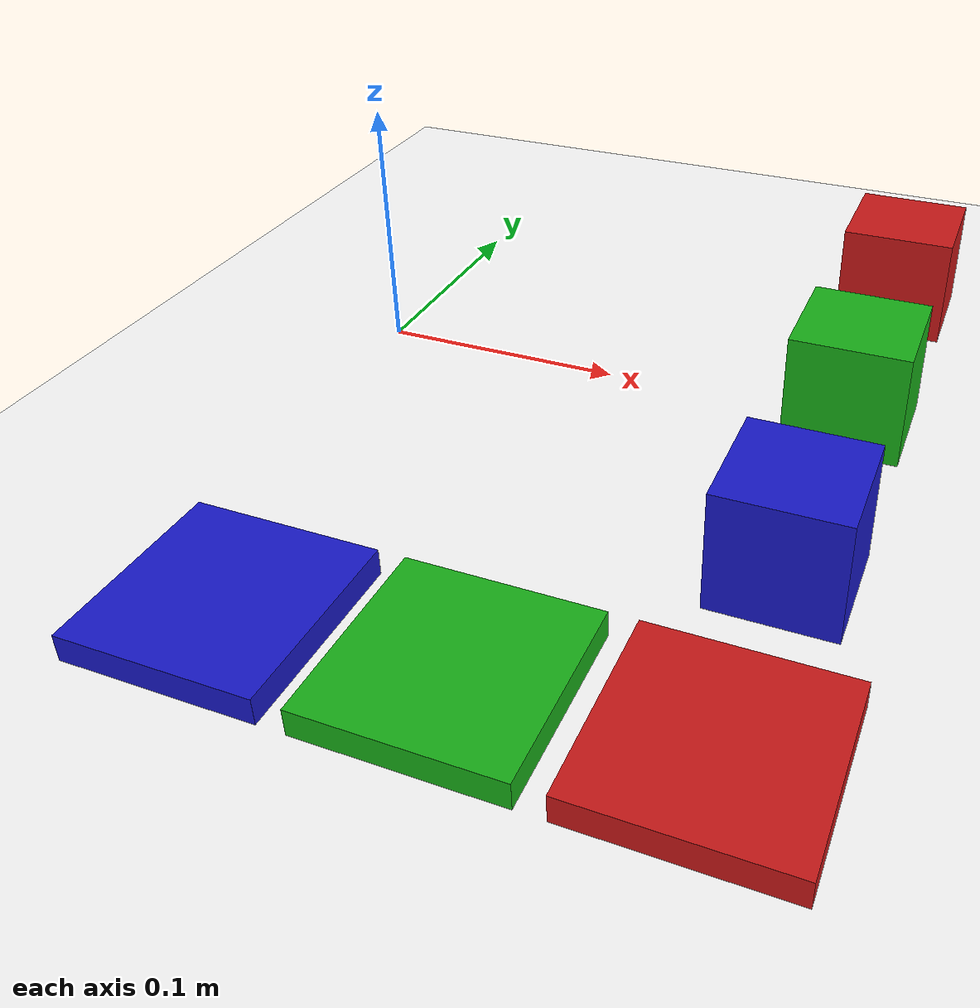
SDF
<?xml version="1.0" ?>
<sdf version="1.8">
  <world name="default">
    <!-- Plugins -->
    <plugin filename="gz-sim-physics-system" name="gz::sim::systems::Physics">
    </plugin>
    <plugin filename="gz-sim-user-commands-system" name="gz::sim::systems::UserCommands">
    </plugin>
    <plugin filename="gz-sim-scene-broadcaster-system" name="gz::sim::systems::SceneBroadcaster">
    </plugin>
    <plugin filename="gz-sim-sensors-system" name="gz::sim::systems::Sensors">
      <render_engine>ogre2</render_engine>
    </plugin>
    <plugin filename="libgz_link_attacher.so" name="gz_link_attacher::LinkAttacher">
      <robot_model_name>dobot_magician_suction_cup</robot_model_name>
      <gripper_link_name>link_suction_cup</gripper_link_name>
    </plugin>

    <plugin filename="gz-sim-contact-system" name="gz::sim::systems::Contact">
    </plugin>

    <!-- Scene -->
    <scene>
      <ambient>0.4 0.4 0.4 1</ambient>
      <background>0.7 0.7 0.7 1</background>
      <shadows>true</shadows>
      <grid>false</grid>
    </scene>

    <!-- Light -->
    <light type="directional" name="sun">
      <cast_shadows>true</cast_shadows>
      <pose>0 0 3 0 0 0</pose>
      <diffuse>0.8 0.8 0.8 1</diffuse>
      <specular>0.2 0.2 0.2 1</specular>
      <direction>-0.5 0.1 -0.9</direction>
    </light>

    <!-- Ground plane, the robot sits directly on top of it -->
    <model name="ground_plane">
      <static>true</static>
      <link name="link">
        <collision name="collision">
          <geometry>
            <plane>
              <normal>0 0 1</normal>
            </plane>
          </geometry>
        </collision>
        <visual name="visual">
          <geometry>
            <plane>
              <normal>0 0 1</normal>
              <size>2 2</size>
            </plane>
          </geometry>
          <!-- Measuring tape and dimensions to copy this layout on a real table -->
          <material>
            <diffuse>1 1 1 1</diffuse>
            <pbr>
              <metal>
                <albedo_map>model://dobot_pick_place_floor/materials/textures/floor.png</albedo_map>
                <metalness>0</metalness>
                <roughness>1</roughness>
              </metal>
            </pbr>
          </material>
        </visual>
      </link>
    </model>

    <!-- 4.5 cm cubes in a T 20 cm in front of the base -->
    <model name="red_cube">
      <pose>0.2 0.1 0.0225 0 0 0</pose>
      <link name="link">
        <inertial>
          <mass>0.07</mass>
          <inertia>
            <ixx>0.0000236</ixx>
            <iyy>0.0000236</iyy>
            <izz>0.0000236</izz>
            <ixy>0</ixy>
            <ixz>0</ixz>
            <iyz>0</iyz>
          </inertia>
        </inertial>
        <collision name="collision">
          <geometry>
            <box>
              <size>0.045 0.045 0.045</size>
            </box>
          </geometry>
        </collision>
        <visual name="visual">
          <geometry>
            <box>
              <size>0.045 0.045 0.045</size>
            </box>
          </geometry>
          <material>
            <ambient>0.8 0.1 0.1 1</ambient>
            <diffuse>0.8 0.1 0.1 1</diffuse>
          </material>
        </visual>
      </link>
    </model>

    <model name="green_cube">
      <pose>0.2 0.0 0.0225 0 0 0</pose>
      <link name="link">
        <inertial>
          <mass>0.07</mass>
          <inertia>
            <ixx>0.0000236</ixx>
            <iyy>0.0000236</iyy>
            <izz>0.0000236</izz>
            <ixy>0</ixy>
            <ixz>0</ixz>
            <iyz>0</iyz>
          </inertia>
        </inertial>
        <collision name="collision">
          <geometry>
            <box>
              <size>0.045 0.045 0.045</size>
            </box>
          </geometry>
        </collision>
        <visual name="visual">
          <geometry>
            <box>
              <size>0.045 0.045 0.045</size>
            </box>
          </geometry>
          <material>
            <ambient>0.1 0.7 0.1 1</ambient>
            <diffuse>0.1 0.7 0.1 1</diffuse>
          </material>
        </visual>
      </link>
    </model>

    <model name="blue_cube">
      <pose>0.2 -0.1 0.0225 0 0 0</pose>
      <link name="link">
        <inertial>
          <mass>0.07</mass>
          <inertia>
            <ixx>0.0000236</ixx>
            <iyy>0.0000236</iyy>
            <izz>0.0000236</izz>
            <ixy>0</ixy>
            <ixz>0</ixz>
            <iyz>0</iyz>
          </inertia>
        </inertial>
        <collision name="collision">
          <geometry>
            <box>
              <size>0.045 0.045 0.045</size>
            </box>
          </geometry>
        </collision>
        <visual name="visual">
          <geometry>
            <box>
              <size>0.045 0.045 0.045</size>
            </box>
          </geometry>
          <material>
            <ambient>0.1 0.1 0.8 1</ambient>
            <diffuse>0.1 0.1 0.8 1</diffuse>
          </material>
        </visual>
      </link>
    </model>

    <!-- One flat mat per cube color, each cube goes to its own -->
    <model name="red_mat">
      <static>true</static>
      <pose>0.2 -0.18 0.005 0 0 0</pose>
      <link name="link">
        <collision name="collision">
          <geometry>
            <box>
              <size>0.07 0.07 0.01</size>
            </box>
          </geometry>
        </collision>
        <visual name="visual">
          <geometry>
            <box>
              <size>0.07 0.07 0.01</size>
            </box>
          </geometry>
          <material>
            <ambient>0.8 0.1 0.1 1</ambient>
            <diffuse>0.8 0.1 0.1 1</diffuse>
          </material>
        </visual>
      </link>
    </model>

    <model name="green_mat">
      <static>true</static>
      <pose>0.12 -0.18 0.005 0 0 0</pose>
      <link name="link">
        <collision name="collision">
          <geometry>
            <box>
              <size>0.07 0.07 0.01</size>
            </box>
          </geometry>
        </collision>
        <visual name="visual">
          <geometry>
            <box>
              <size>0.07 0.07 0.01</size>
            </box>
          </geometry>
          <material>
            <ambient>0.1 0.7 0.1 1</ambient>
            <diffuse>0.1 0.7 0.1 1</diffuse>
          </material>
        </visual>
      </link>
    </model>

    <model name="blue_mat">
      <static>true</static>
      <pose>0.04 -0.18 0.005 0 0 0</pose>
      <link name="link">
        <collision name="collision">
          <geometry>
            <box>
              <size>0.07 0.07 0.01</size>
            </box>
          </geometry>
        </collision>
        <visual name="visual">
          <geometry>
            <box>
              <size>0.07 0.07 0.01</size>
            </box>
          </geometry>
          <material>
            <ambient>0.1 0.1 0.8 1</ambient>
            <diffuse>0.1 0.1 0.8 1</diffuse>
          </material>
        </visual>
      </link>
    </model>

  </world>
</sdf>
